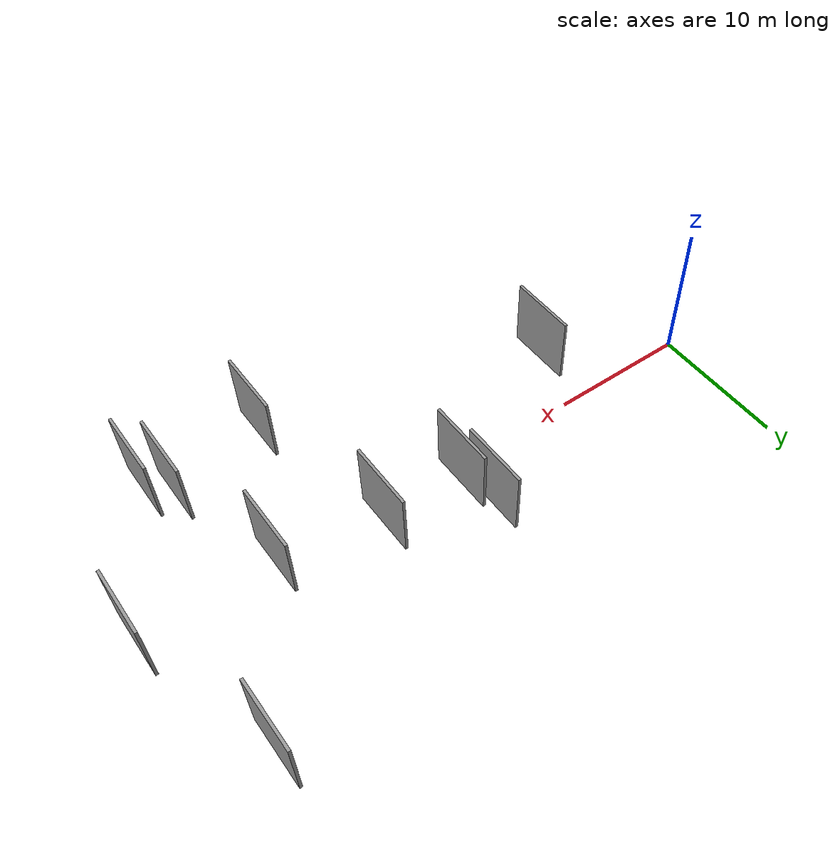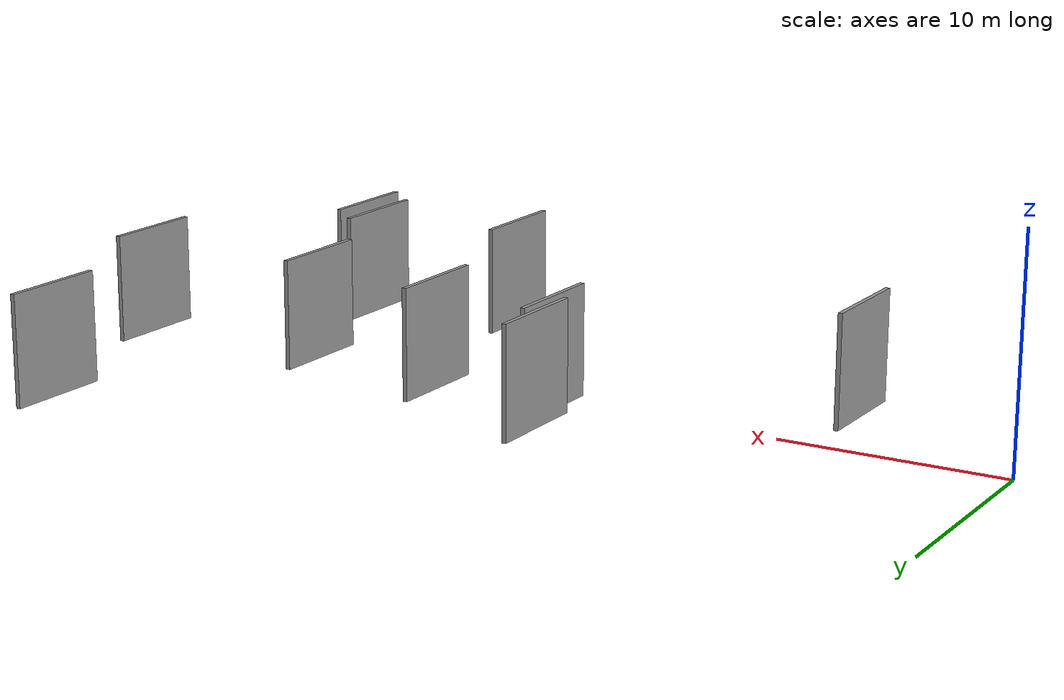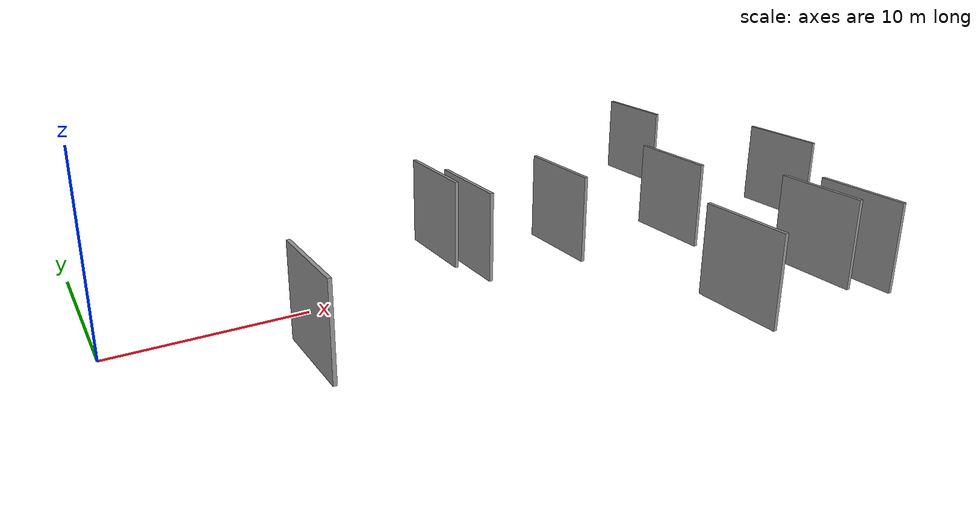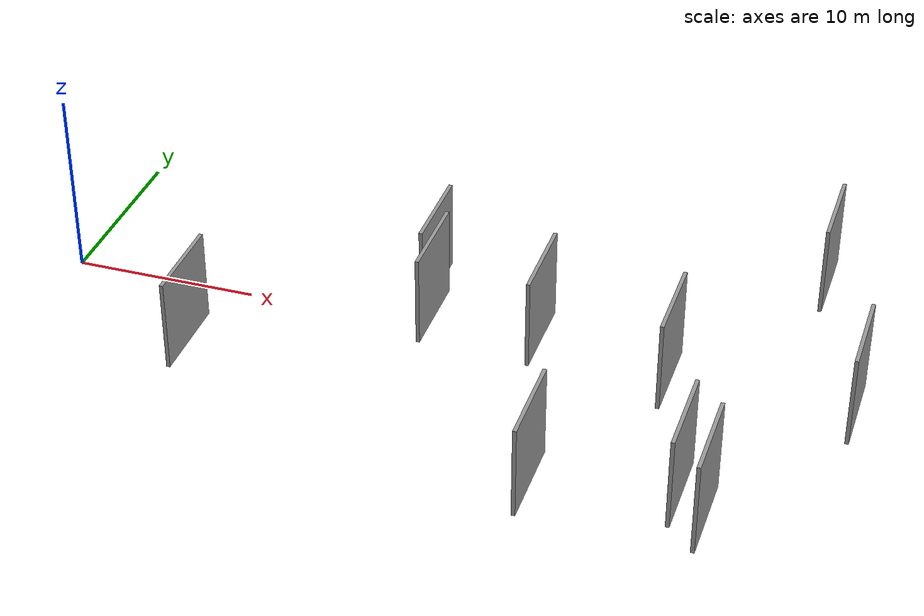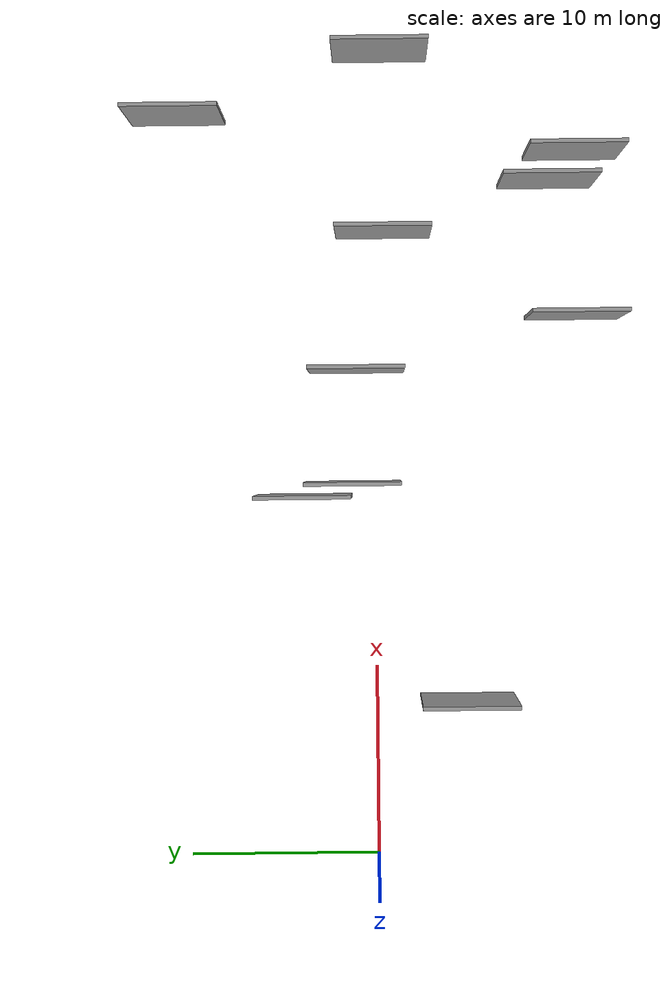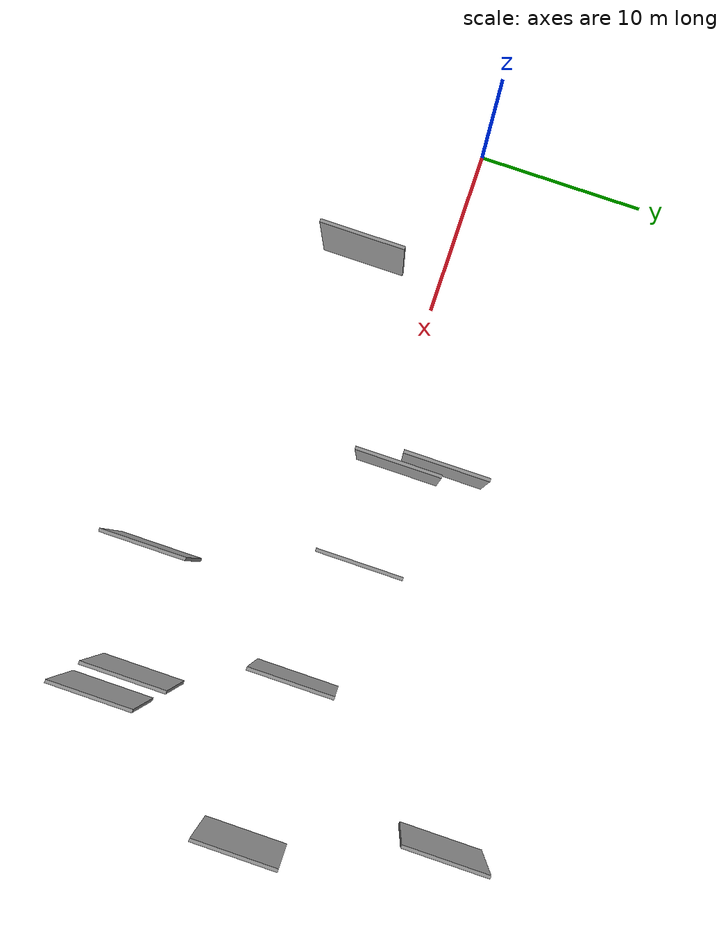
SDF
<sdf version="1.6">
 <world name="default">
  <scene>
   <sky><clouds><speed>12</speed></clouds></sky>
   <ambient>0.4 0.4 0.4 1</ambient>
   <background>0.7 0.7 0.7 1</background>
   <shadows>1</shadows>
  </scene>
  <gravity>0 0 -9.8066</gravity>
  <magnetic_field>6e-06 2.3e-05 -4.2e-05</magnetic_field>
  <physics default="0" name="default_physics" type="ode">
   <ode>
    <solver>
     <type>quick</type>
     <iters>10</iters>
     <sor>1.0</sor>
     <use_dynamic_moi_rescaling>0</use_dynamic_moi_rescaling>
    </solver>
    <constraints>
     <cfm>0</cfm>
     <erp>0.2</erp>
     <contact_max_correcting_vel>100</contact_max_correcting_vel>
     <contact_surface_layer>0.001</contact_surface_layer>
    </constraints>
   </ode>
   <max_step_size>0.004</max_step_size>
   <real_time_factor>1</real_time_factor>
   <real_time_update_rate>250</real_time_update_rate>
  </physics>
  <light name="sun" type="directional">
   <pose>0 0 10 0 0 0</pose>
   <diffuse>0.8 0.8 0.8 1</diffuse>
   <specular>0.2 0.2 0.2 1</specular>
   <attenuation>
    <range>1000</range>
    <constant>0.9</constant>
    <linear>0.01</linear>
    <quadratic>0.001</quadratic>
   </attenuation>
   <direction>-0.5 0.1 -0.9</direction>
  </light>
  <model name="grey_wall_1">
   <static>1</static>
   <pose>25.8275 0.9437 0.0 0.000000 0.000000 1.570796</pose>
   <link name="link">
    <pose>0 0 2.50 0 0 0</pose>
    <collision name="collision"><geometry><box><size>5.00 0.2 5.00</size></box></geometry></collision>
    <visual name="visual">
     <cast_shadows>0</cast_shadows>
     <geometry><box><size>5.00 0.2 5.00</size></box></geometry>
     <material>
      <script>
       <uri>model://grey_wall/materials/scripts</uri>
       <uri>model://grey_wall/materials/textures</uri>
       <name>vrc/grey_wall</name>
      </script>
     </material>
    </visual>
   </link>
  </model>
  <model name="grey_wall_2">
   <static>1</static>
   <pose>37.1634 -10.5416 0.0 0.000000 0.000000 1.570796</pose>
   <link name="link">
    <pose>0 0 2.50 0 0 0</pose>
    <collision name="collision"><geometry><box><size>5.00 0.2 5.00</size></box></geometry></collision>
    <visual name="visual">
     <cast_shadows>0</cast_shadows>
     <geometry><box><size>5.00 0.2 5.00</size></box></geometry>
     <material>
      <script>
       <uri>model://grey_wall/materials/scripts</uri>
       <uri>model://grey_wall/materials/textures</uri>
       <name>vrc/grey_wall</name>
      </script>
     </material>
    </visual>
   </link>
  </model>
  <model name="grey_wall_3">
   <static>1</static>
   <pose>39.2354 10.3449 0.0 0.000000 0.000000 1.570796</pose>
   <link name="link">
    <pose>0 0 2.50 0 0 0</pose>
    <collision name="collision"><geometry><box><size>5.00 0.2 5.00</size></box></geometry></collision>
    <visual name="visual">
     <cast_shadows>0</cast_shadows>
     <geometry><box><size>5.00 0.2 5.00</size></box></geometry>
     <material>
      <script>
       <uri>model://grey_wall/materials/scripts</uri>
       <uri>model://grey_wall/materials/textures</uri>
       <name>vrc/grey_wall</name>
      </script>
     </material>
    </visual>
   </link>
  </model>
  <model name="grey_wall_4">
   <static>1</static>
   <pose>35.6481 -9.1595 0.0 0.000000 0.000000 1.570796</pose>
   <link name="link">
    <pose>0 0 2.50 0 0 0</pose>
    <collision name="collision"><geometry><box><size>5.00 0.2 5.00</size></box></geometry></collision>
    <visual name="visual">
     <cast_shadows>0</cast_shadows>
     <geometry><box><size>5.00 0.2 5.00</size></box></geometry>
     <material>
      <script>
       <uri>model://grey_wall/materials/scripts</uri>
       <uri>model://grey_wall/materials/textures</uri>
       <name>vrc/grey_wall</name>
      </script>
     </material>
    </visual>
   </link>
  </model>
  <model name="grey_wall_5">
   <static>1</static>
   <pose>8.4165 -4.8000 0.0 0.000000 0.000000 1.570796</pose>
   <link name="link">
    <pose>0 0 2.50 0 0 0</pose>
    <collision name="collision"><geometry><box><size>5.00 0.2 5.00</size></box></geometry></collision>
    <visual name="visual">
     <cast_shadows>0</cast_shadows>
     <geometry><box><size>5.00 0.2 5.00</size></box></geometry>
     <material>
      <script>
       <uri>model://grey_wall/materials/scripts</uri>
       <uri>model://grey_wall/materials/textures</uri>
       <name>vrc/grey_wall</name>
      </script>
     </material>
    </visual>
   </link>
  </model>
  <model name="grey_wall_6">
   <static>1</static>
   <pose>19.1976 3.7492 0.0 0.000000 0.000000 1.570796</pose>
   <link name="link">
    <pose>0 0 2.50 0 0 0</pose>
    <collision name="collision"><geometry><box><size>5.00 0.2 5.00</size></box></geometry></collision>
    <visual name="visual">
     <cast_shadows>0</cast_shadows>
     <geometry><box><size>5.00 0.2 5.00</size></box></geometry>
     <material>
      <script>
       <uri>model://grey_wall/materials/scripts</uri>
       <uri>model://grey_wall/materials/textures</uri>
       <name>vrc/grey_wall</name>
      </script>
     </material>
    </visual>
   </link>
  </model>
  <model name="grey_wall_7">
   <static>1</static>
   <pose>33.0497 -0.5105 0.0 0.000000 0.000000 1.570796</pose>
   <link name="link">
    <pose>0 0 2.50 0 0 0</pose>
    <collision name="collision"><geometry><box><size>5.00 0.2 5.00</size></box></geometry></collision>
    <visual name="visual">
     <cast_shadows>0</cast_shadows>
     <geometry><box><size>5.00 0.2 5.00</size></box></geometry>
     <material>
      <script>
       <uri>model://grey_wall/materials/scripts</uri>
       <uri>model://grey_wall/materials/textures</uri>
       <name>vrc/grey_wall</name>
      </script>
     </material>
    </visual>
   </link>
  </model>
  <model name="grey_wall_8">
   <static>1</static>
   <pose>19.8638 1.1805 0.0 0.000000 0.000000 1.570796</pose>
   <link name="link">
    <pose>0 0 2.50 0 0 0</pose>
    <collision name="collision"><geometry><box><size>5.00 0.2 5.00</size></box></geometry></collision>
    <visual name="visual">
     <cast_shadows>0</cast_shadows>
     <geometry><box><size>5.00 0.2 5.00</size></box></geometry>
     <material>
      <script>
       <uri>model://grey_wall/materials/scripts</uri>
       <uri>model://grey_wall/materials/textures</uri>
       <name>vrc/grey_wall</name>
      </script>
     </material>
    </visual>
   </link>
  </model>
  <model name="grey_wall_9">
   <static>1</static>
   <pose>28.5862 -10.5691 0.0 0.000000 0.000000 1.570796</pose>
   <link name="link">
    <pose>0 0 2.50 0 0 0</pose>
    <collision name="collision"><geometry><box><size>5.00 0.2 5.00</size></box></geometry></collision>
    <visual name="visual">
     <cast_shadows>0</cast_shadows>
     <geometry><box><size>5.00 0.2 5.00</size></box></geometry>
     <material>
      <script>
       <uri>model://grey_wall/materials/scripts</uri>
       <uri>model://grey_wall/materials/textures</uri>
       <name>vrc/grey_wall</name>
      </script>
     </material>
    </visual>
   </link>
  </model>
  <model name="grey_wall_10">
   <static>1</static>
   <pose>42.5260 -0.4181 0.0 0.000000 0.000000 1.570796</pose>
   <link name="link">
    <pose>0 0 2.50 0 0 0</pose>
    <collision name="collision"><geometry><box><size>5.00 0.2 5.00</size></box></geometry></collision>
    <visual name="visual">
     <cast_shadows>0</cast_shadows>
     <geometry><box><size>5.00 0.2 5.00</size></box></geometry>
     <material>
      <script>
       <uri>model://grey_wall/materials/scripts</uri>
       <uri>model://grey_wall/materials/textures</uri>
       <name>vrc/grey_wall</name>
      </script>
     </material>
    </visual>
   </link>
  </model>
 </world>
</sdf>
